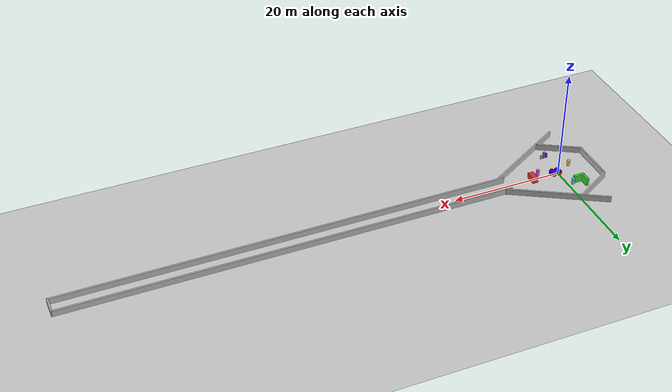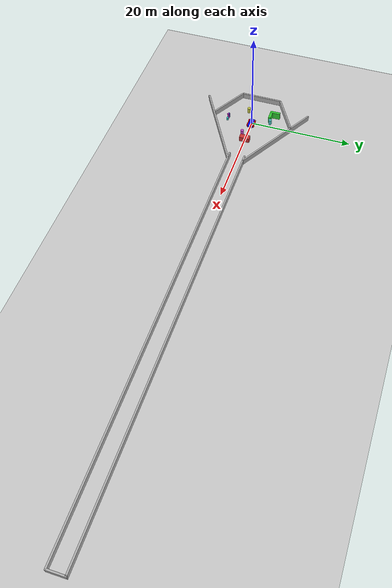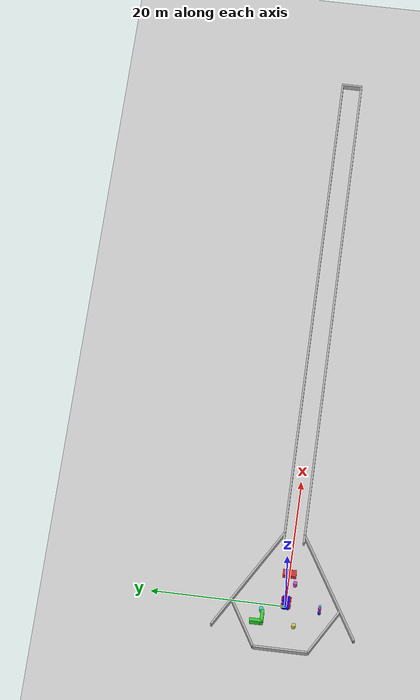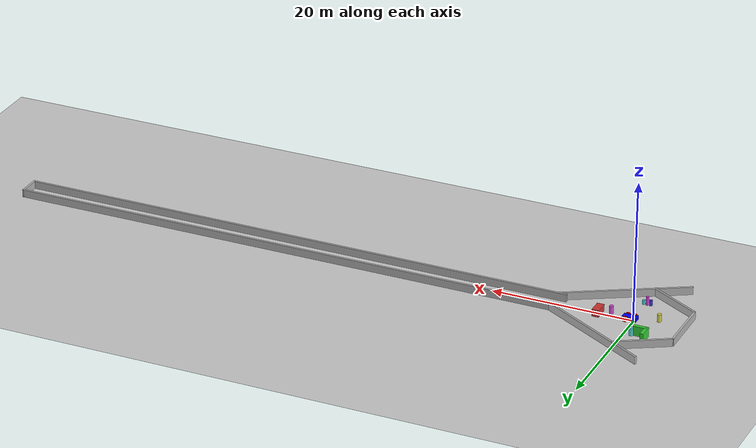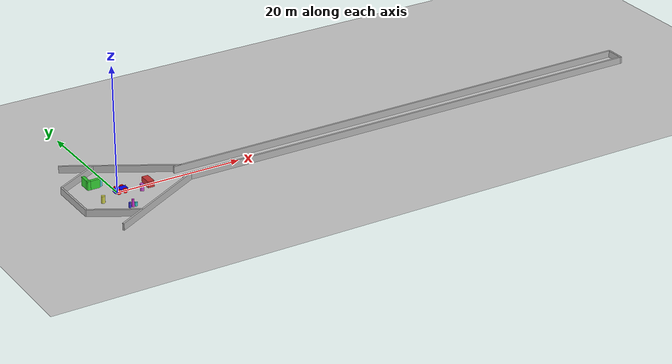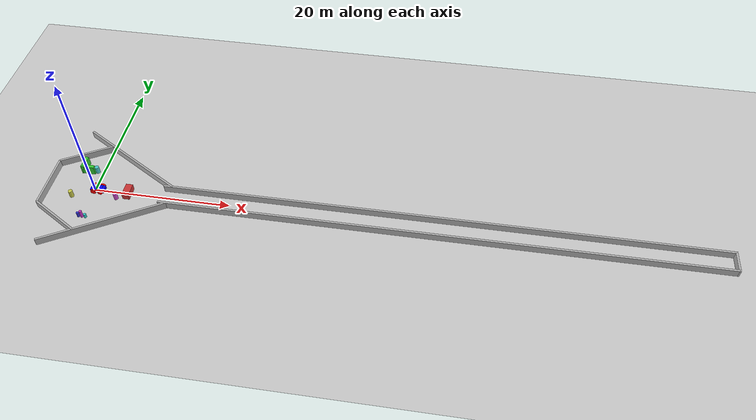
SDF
<?xml version="1.0" ?>
<sdf version="1.7">
    <world name="car_world">
        <physics name="1ms" type="ignored">
            <max_step_size>0.001</max_step_size>
            <real_time_factor>1.0</real_time_factor>
        </physics>

        <!-- 模拟世界的动态 -->
        <plugin
            filename="libignition-gazebo-physics-system.so"
            name="ignition::gazebo::systems::Physics">
        </plugin>

        <!-- 负责创建模型、移动模型、删除模型和许多其他用户命令 -->
        <plugin
            filename="libignition-gazebo-user-commands-system.so"
            name="ignition::gazebo::systems::UserCommands">
        </plugin>
        <plugin
            filename="libignition-gazebo-scene-broadcaster-system.so"
            name="ignition::gazebo::systems::SceneBroadcaster">
        </plugin>

        <!-- 碰撞检测传感器 -->
        <plugin filename="libignition-gazebo-contact-system.so"
                name="ignition::gazebo::systems::Contact">
        </plugin>

        <gui fullscreen="0">

            <!-- 负责显示世界的 3D 场景 -->
            <plugin filename="GzScene3D" name="3D View">
                <ignition-gui>
                <title>3D View</title>
                <property type="bool" key="showTitleBar">false</property>
                <property type="string" key="state">docked</property>
                </ignition-gui>

                <engine>ogre2</engine>
                <scene>scene</scene>
                <ambient_light>0.4 0.4 0.4</ambient_light>
                <background_color>0.8 0.8 0.8</background_color>
            </plugin>

            <!-- 负责控制世界 -->
            <plugin filename="WorldControl" name="World control">
                <ignition-gui>
                <title>World control</title>
                <property type="bool" key="showTitleBar">false</property>
                <property type="bool" key="resizable">false</property>
                <property type="double" key="height">72</property>
                <property type="double" key="width">121</property>
                <property type="double" key="z">1</property>

                <property type="string" key="state">floating</property>
                <anchors target="3D View">
                    <line own="left" target="left"/>
                    <line own="bottom" target="bottom"/>
                </anchors>
                </ignition-gui>

                <play_pause>true</play_pause>
                <step>true</step>
                <start_paused>true</start_paused>
                <service>/world/car_world/control</service>
                <stats_topic>/world/car_world/stats</stats_topic>
            </plugin>

            <!-- 负责显示世界统计数据 -->
            <plugin filename="WorldStats" name="World stats">
                <ignition-gui>
                <title>World stats</title>
                <property type="bool" key="showTitleBar">false</property>
                <property type="bool" key="resizable">false</property>
                <property type="double" key="height">110</property>
                <property type="double" key="width">290</property>
                <property type="double" key="z">1</property>

                <property type="string" key="state">floating</property>
                <anchors target="3D View">
                    <line own="right" target="right"/>
                    <line own="bottom" target="bottom"/>
                </anchors>
                </ignition-gui>

                <sim_time>true</sim_time>
                <real_time>true</real_time>
                <real_time_factor>true</real_time_factor>
                <iterations>true</iterations>
                <topic>/world/car_world/stats</topic>

            </plugin>

            <!-- Entity tree -->
            <plugin filename="EntityTree" name="Entity tree">
            </plugin>

            <!-- 监测键盘输入 -->
            <plugin filename="KeyPublisher" name="Key Publisher"/>

        </gui>

        <light type="directional" name="sun">
            <cast_shadows>true</cast_shadows>
            <pose>0 0 10 0 0 0</pose>
            <diffuse>0.8 0.8 0.8 1</diffuse>
            <specular>0.2 0.2 0.2 1</specular>
            <attenuation>
                <range>1000</range>
                <constant>0.9</constant>
                <linear>0.01</linear>
                <quadratic>0.001</quadratic>
            </attenuation>
            <direction>-0.5 0.1 -0.9</direction>
        </light>

        <model name="ground_plane">
            <static>true</static>
            <link name="link">
                <collision name="collision">
                <geometry>
                    <plane>
                    <normal>0 0 1</normal>
                    </plane>
                </geometry>
                </collision>
                <visual name="visual">
                <geometry>
                    <plane>
                    <normal>0 0 1</normal>
                    <size>100 100</size>
                    </plane>
                </geometry>
                <material>
                    <ambient>0.8 0.8 0.8 1</ambient>
                    <diffuse>0.8 0.8 0.8 1</diffuse>
                    <specular>0.8 0.8 0.8 1</specular>
                </material>
                </visual>
            </link>
        </model>

        <!-- 正六边形围墙 -->
        <!-- 六边形半径为 8 米，每条边长约 8 米 -->

        <!-- 墙1: 正前方 (0°) - 已移除以创建开口 -->

        <!-- 墙2: 右前方 (60°) - 延长以形成漏斗 -->
        <model name='hex_wall_2'>
            <static>true</static>
            <pose>3.464 6 0 0 0 1.047</pose>
            <link name='link'>
                <visual name='visual'>
                    <geometry>
                        <box>
                            <size>0.3 18.0 2.0</size>
                        </box>
                    </geometry>
                    <material>
                        <ambient>0.7 0.7 0.7 1</ambient>
                        <diffuse>0.7 0.7 0.7 1</diffuse>
                        <specular>0.5 0.5 0.5 1</specular>
                    </material>
                </visual>
                <collision name='collision'>
                    <geometry>
                        <box>
                            <size>0.3 18.0 2.0</size>
                        </box>
                    </geometry>
                </collision>
            </link>
        </model>

        <!-- 墙3: 右后方 (120°) -->
        <model name='hex_wall_3'>
            <static>true</static>
            <pose>-3.464 6.0 0 0 0 2.094</pose>
            <link name='link'>
                <visual name='visual'>
                    <geometry>
                        <box>
                            <size>0.3 8.0 2.0</size>
                        </box>
                    </geometry>
                    <material>
                        <ambient>0.7 0.7 0.7 1</ambient>
                        <diffuse>0.7 0.7 0.7 1</diffuse>
                        <specular>0.5 0.5 0.5 1</specular>
                    </material>
                </visual>
                <collision name='collision'>
                    <geometry>
                        <box>
                            <size>0.3 8.0 2.0</size>
                        </box>
                    </geometry>
                </collision>
            </link>
        </model>

        <!-- 墙4: 正后方 (180°) -->
        <model name='hex_wall_4'>
            <static>true</static>
            <pose>-6.928 0 0 0 0 3.14159</pose>
            <link name='link'>
                <visual name='visual'>
                    <geometry>
                        <box>
                            <size>0.3 8.0 2.0</size>
                        </box>
                    </geometry>
                    <material>
                        <ambient>0.7 0.7 0.7 1</ambient>
                        <diffuse>0.7 0.7 0.7 1</diffuse>
                        <specular>0.5 0.5 0.5 1</specular>
                    </material>
                </visual>
                <collision name='collision'>
                    <geometry>
                        <box>
                            <size>0.3 8.0 2.0</size>
                        </box>
                    </geometry>
                </collision>
            </link>
        </model>

        <!-- 墙5: 左后方 (240°) -->
        <model name='hex_wall_5'>
            <static>true</static>
            <pose>-3.464 -6.0 0 0 0 -2.094</pose>
            <link name='link'>
                <visual name='visual'>
                    <geometry>
                        <box>
                            <size>0.3 8.0 2.0</size>
                        </box>
                    </geometry>
                    <material>
                        <ambient>0.7 0.7 0.7 1</ambient>
                        <diffuse>0.7 0.7 0.7 1</diffuse>
                        <specular>0.5 0.5 0.5 1</specular>
                    </material>
                </visual>
                <collision name='collision'>
                    <geometry>
                        <box>
                            <size>0.3 8.0 2.0</size>
                        </box>
                    </geometry>
                </collision>
            </link>
        </model>

        <!-- 墙6: 左前方 (300°) - 延长以形成漏斗 -->
        <model name='hex_wall_6'>
            <static>true</static>
            <pose>3.464 -6 0 0 0 -1.047</pose>
            <link name='link'>
                <visual name='visual'>
                    <geometry>
                        <box>
                            <size>0.3 18.0 2.0</size>
                        </box>
                    </geometry>
                    <material>
                        <ambient>0.7 0.7 0.7 1</ambient>
                        <diffuse>0.7 0.7 0.7 1</diffuse>
                        <specular>0.5 0.5 0.5 1</specular>
                    </material>
                </visual>
                <collision name='collision'>
                    <geometry>
                        <box>
                            <size>0.3 18.0 2.0</size>
                        </box>
                    </geometry>
                </collision>
            </link>
        </model>

        <!-- 狭长通道 - 左墙 -->
        <model name='corridor_left'>
            <static>true</static>
            <pose>50 1.5 0 0 0 0</pose>
            <link name='link'>
                <visual name='visual'>
                    <geometry>
                        <box>
                            <size>80 0.3 2.0</size>
                        </box>
                    </geometry>
                    <material>
                        <ambient>0.7 0.7 0.7 1</ambient>
                        <diffuse>0.7 0.7 0.7 1</diffuse>
                        <specular>0.5 0.5 0.5 1</specular>
                    </material>
                </visual>
                <collision name='collision'>
                    <geometry>
                        <box>
                            <size>80 0.3 2.0</size>
                        </box>
                    </geometry>
                </collision>
            </link>
        </model>

        <!-- 狭长通道 - 右墙 -->
        <model name='corridor_right'>
            <static>true</static>
            <pose>50 -1.5 0 0 0 0</pose>
            <link name='link'>
                <visual name='visual'>
                    <geometry>
                        <box>
                            <size>80 0.3 2.0</size>
                        </box>
                    </geometry>
                    <material>
                        <ambient>0.7 0.7 0.7 1</ambient>
                        <diffuse>0.7 0.7 0.7 1</diffuse>
                        <specular>0.5 0.5 0.5 1</specular>
                    </material>
                </visual>
                <collision name='collision'>
                    <geometry>
                        <box>
                            <size>80 0.3 2.0</size>
                        </box>
                    </geometry>
                </collision>
            </link>
        </model>

        <!-- 通道末端封闭墙 -->
        <model name='corridor_end'>
            <static>true</static>
            <pose>90 0 0 0 0 0</pose>
            <link name='link'>
                <visual name='visual'>
                    <geometry>
                        <box>
                            <size>0.3 3.3 2.0</size>
                        </box>
                    </geometry>
                    <material>
                        <ambient>0.7 0.7 0.7 1</ambient>
                        <diffuse>0.7 0.7 0.7 1</diffuse>
                        <specular>0.5 0.5 0.5 1</specular>
                    </material>
                </visual>
                <collision name='collision'>
                    <geometry>
                        <box>
                            <size>0.3 3.3 2.0</size>
                        </box>
                    </geometry>
                </collision>
            </link>
        </model>

        <!-- 内部随机分布的圆柱障碍物 -->

        <!-- 柱子4 -->
        <model name='pillar_4'>
            <static>true</static>
            <pose>-3.0 -1.5 0 0 0 0</pose>
            <link name='link'>
                <visual name='visual'>
                    <geometry>
                        <cylinder>
                            <radius>0.3</radius>
                            <length>2.0</length>
                        </cylinder>
                    </geometry>
                    <material>
                        <ambient>0.8 0.8 0.3 1</ambient>
                        <diffuse>0.8 0.8 0.3 1</diffuse>
                        <specular>0.5 0.5 0.5 1</specular>
                    </material>
                </visual>
                <collision name='collision'>
                    <geometry>
                        <cylinder>
                            <radius>0.3</radius>
                            <length>2.0</length>
                        </cylinder>
                    </geometry>
                </collision>
            </link>
        </model>

        <!-- 柱子5 -->
        <model name='pillar_5'>
            <static>true</static>
            <pose>3.5 -1.0 0 0 0 0</pose>
            <link name='link'>
                <visual name='visual'>
                    <geometry>
                        <cylinder>
                            <radius>0.3</radius>
                            <length>2.0</length>
                        </cylinder>
                    </geometry>
                    <material>
                        <ambient>0.8 0.3 0.8 1</ambient>
                        <diffuse>0.8 0.3 0.8 1</diffuse>
                        <specular>0.5 0.5 0.5 1</specular>
                    </material>
                </visual>
                <collision name='collision'>
                    <geometry>
                        <cylinder>
                            <radius>0.3</radius>
                            <length>2.0</length>
                        </cylinder>
                    </geometry>
                </collision>
            </link>
        </model>

        <!-- 柱子6 -->
        <model name='pillar_6'>
            <static>true</static>
            <pose>-1.0 3.5 0 0 0 0</pose>
            <link name='link'>
                <visual name='visual'>
                    <geometry>
                        <cylinder>
                            <radius>0.3</radius>
                            <length>2.0</length>
                        </cylinder>
                    </geometry>
                    <material>
                        <ambient>0.3 0.8 0.8 1</ambient>
                        <diffuse>0.3 0.8 0.8 1</diffuse>
                        <specular>0.5 0.5 0.5 1</specular>
                    </material>
                </visual>
                <collision name='collision'>
                    <geometry>
                        <cylinder>
                            <radius>0.3</radius>
                            <length>2.0</length>
                        </cylinder>
                    </geometry>
                </collision>
            </link>
        </model>

        <!-- 添加非对称地标物体，帮助 SLAM 区分位置 -->

        <!-- 大型方形障碍物 - 东侧 -->
        <model name='landmark_box'>
            <static>true</static>
            <pose>5 0 0.5 0 0 0</pose>
            <link name='link'>
                <collision name='collision'>
                    <geometry>
                        <box>
                            <size>1.0 2.0 1.0</size>
                        </box>
                    </geometry>
                </collision>
                <visual name='visual'>
                    <geometry>
                        <box>
                            <size>1.0 2.0 1.0</size>
                        </box>
                    </geometry>
                    <material>
                        <ambient>0.8 0.2 0.2 1</ambient>
                        <diffuse>0.8 0.2 0.2 1</diffuse>
                    </material>
                </visual>
            </link>
        </model>

        <!-- L 形障碍物 - 西北侧 -->
        <model name='landmark_L_shape'>
            <static>true</static>
            <pose>-3 4 0.3 0 0 0</pose>
            <link name='link'>
                <collision name='collision1'>
                    <pose>0 0 0 0 0 0</pose>
                    <geometry>
                        <box>
                            <size>0.5 2.0 2</size>
                        </box>
                    </geometry>
                </collision>
                <collision name='collision2'>
                    <pose>0.75 -0.75 0 0 0 0</pose>
                    <geometry>
                        <box>
                            <size>2.0 0.5 2</size>
                        </box>
                    </geometry>
                </collision>
                <visual name='visual1'>
                    <pose>0 0 0 0 0 0</pose>
                    <geometry>
                        <box>
                            <size>0.5 2.0 2</size>
                        </box>
                    </geometry>
                    <material>
                        <ambient>0.2 0.8 0.2 1</ambient>
                        <diffuse>0.2 0.8 0.2 1</diffuse>
                    </material>
                </visual>
                <visual name='visual2'>
                    <pose>0.75 -0.75 0 0 0 0</pose>
                    <geometry>
                        <box>
                            <size>2.0 0.5 2</size>
                        </box>
                    </geometry>
                    <material>
                        <ambient>0.2 0.8 0.2 1</ambient>
                        <diffuse>0.2 0.8 0.2 1</diffuse>
                    </material>
                </visual>
            </link>
        </model>

        <!-- 三个不同高度的柱子群 - 南侧 -->
        <model name='landmark_pillars'>
            <static>true</static>
            <pose>0 -5 0 0 0 0</pose>
            <link name='link'>
                <collision name='collision1'>
                    <pose>-0.5 0 0.4 0 0 0</pose>
                    <geometry>
                        <cylinder>
                            <radius>0.2</radius>
                            <length>0.8</length>
                        </cylinder>
                    </geometry>
                </collision>
                <collision name='collision2'>
                    <pose>0 0 0.6 0 0 0</pose>
                    <geometry>
                        <cylinder>
                            <radius>0.2</radius>
                            <length>1.2</length>
                        </cylinder>
                    </geometry>
                </collision>
                <collision name='collision3'>
                    <pose>0.5 0 0.3 0 0 0</pose>
                    <geometry>
                        <cylinder>
                            <radius>0.2</radius>
                            <length>0.6</length>
                        </cylinder>
                    </geometry>
                </collision>
                <visual name='visual1'>
                    <pose>-0.5 0 0.4 0 0 0</pose>
                    <geometry>
                        <cylinder>
                            <radius>0.2</radius>
                            <length>0.8</length>
                        </cylinder>
                    </geometry>
                    <material>
                        <ambient>0.2 0.2 0.8 1</ambient>
                        <diffuse>0.2 0.2 0.8 1</diffuse>
                    </material>
                </visual>
                <visual name='visual2'>
                    <pose>0 0 0.6 0 0 0</pose>
                    <geometry>
                        <cylinder>
                            <radius>0.2</radius>
                            <length>1.2</length>
                        </cylinder>
                    </geometry>
                    <material>
                        <ambient>0.8 0.2 0.8 1</ambient>
                        <diffuse>0.8 0.2 0.8 1</diffuse>
                    </material>
                </visual>
                <visual name='visual3'>
                    <pose>0.5 0 0.3 0 0 0</pose>
                    <geometry>
                        <cylinder>
                            <radius>0.2</radius>
                            <length>0.6</length>
                        </cylinder>
                    </geometry>
                    <material>
                        <ambient>0.2 0.8 0.8 1</ambient>
                        <diffuse>0.2 0.8 0.8 1</diffuse>
                    </material>
                </visual>
            </link>
        </model>

        <!-- 引用机器人模型 -->
        <include>
            <uri>/home/flowhist/ign_ws/src/robo_ctrl/models/vehicle_robot</uri>
            <name>vehicle_robot</name>
            <pose>0 0 0 0 0 0</pose>
        </include>

        <!-- 引用actor可动障碍物 -->

    </world>
</sdf>

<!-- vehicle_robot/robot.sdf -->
<sdf version="1.7">
    <model name='vehicle_robot' canonical_link='chassis'>
        <pose>0 0 0 0 0 0</pose>

        <link name='chassis'>
            <pose relative_to='__model__'>0.5 0 0.4 0 0 0</pose>
            <inertial>
                <mass>1.14395</mass>
                <inertia>
                    <ixx>0.095329</ixx>
                    <ixy>0</ixy>
                    <ixz>0</ixz>
                    <iyy>0.381317</iyy>
                    <iyz>0</iyz>
                    <izz>0.476646</izz>
                </inertia>
            </inertial>
            <visual name='visual'>
                <geometry>
                    <box>
                        <size>2.0 1.0 0.5</size>
                    </box>
                </geometry>
                <material>
                    <ambient>0.0 0.0 1.0 1</ambient>
                    <diffuse>0.0 0.0 1.0 1</diffuse>
                    <specular>0.0 0.0 1.0 1</specular>
                </material>
            </visual>
            <collision name='collision'>
                <geometry>
                    <box>
                        <size>2.0 1.0 0.5</size>
                    </box>
                </geometry>
            </collision>
        </link>

        <!-- IMU 传感器 Link -->
        <link name='imu_link'>
            <pose relative_to="chassis">0 0 0.3 0 0 0</pose>  <!-- IMU 位置：chassis 中心上方 30cm -->
            <inertial>
                <mass>0.02</mass>  <!-- IMU 重量 20g -->
                <inertia>
                    <ixx>0.000001</ixx>
                    <ixy>0</ixy>
                    <ixz>0</ixz>
                    <iyy>0.000001</iyy>
                    <iyz>0</iyz>
                    <izz>0.000001</izz>
                </inertia>
            </inertial>
            <visual name='visual'>
                <geometry>
                    <box>
                        <size>0.02 0.02 0.01</size>  <!-- 小方块：2cm x 2cm x 1cm -->
                    </box>
                </geometry>
                <material>
                    <ambient>0.2 0.8 0.2 1</ambient>  <!-- 绿色 -->
                    <diffuse>0.2 0.8 0.2 1</diffuse>
                    <specular>0.2 0.8 0.2 1</specular>
                </material>
            </visual>
            <collision name='collision'>
                <geometry>
                    <box>
                        <size>0.02 0.02 0.01</size>
                    </box>
                </geometry>
            </collision>

            <!-- IMU传感器 -->
            <sensor name="imu_sensor" type="imu">
                <pose>0 0 0 0 0 0</pose>  <!-- 传感器在 imu_link 中心 -->
                <always_on>1</always_on>
                <update_rate>100</update_rate>  <!-- 提高到 100 Hz -->
                <visualize>true</visualize>
                <topic>imu</topic>
                <ignition_frame_id>vehicle_robot/imu_link</ignition_frame_id>  <!-- 更新 frame_id -->
                <imu>
                    <!-- 添加噪声参数，让 IMU 数据更真实 -->
                    <angular_velocity>
                        <x>
                            <noise type="gaussian">
                                <mean>0.0</mean>
                                <stddev>2e-4</stddev>
                            </noise>
                        </x>
                        <y>
                            <noise type="gaussian">
                                <mean>0.0</mean>
                                <stddev>2e-4</stddev>
                            </noise>
                        </y>
                        <z>
                            <noise type="gaussian">
                                <mean>0.0</mean>
                                <stddev>2e-4</stddev>
                            </noise>
                        </z>
                    </angular_velocity>
                    <linear_acceleration>
                        <x>
                            <noise type="gaussian">
                                <mean>0.0</mean>
                                <stddev>1.7e-2</stddev>
                            </noise>
                        </x>
                        <y>
                            <noise type="gaussian">
                                <mean>0.0</mean>
                                <stddev>1.7e-2</stddev>
                            </noise>
                        </y>
                        <z>
                            <noise type="gaussian">
                                <mean>0.0</mean>
                                <stddev>1.7e-2</stddev>
                            </noise>
                        </z>
                    </linear_acceleration>
                    <!-- 添加方向噪声（关键！） -->
                    <orientation>
                        <x>
                            <noise type="gaussian">
                                <mean>0.0</mean>
                                <stddev>0.00017</stddev>
                            </noise>
                        </x>
                        <y>
                            <noise type="gaussian">
                                <mean>0.0</mean>
                                <stddev>0.00017</stddev>
                            </noise>
                        </y>
                        <z>
                            <noise type="gaussian">
                                <mean>0.0</mean>
                                <stddev>0.00017</stddev>
                            </noise>
                        </z>
                    </orientation>
                </imu>
            </sensor>
        </link>

        <!-- IMU Joint：将 IMU 连接到底盘 -->
        <joint name='imu_joint' type='fixed'>
            <child>imu_link</child>
            <parent>chassis</parent>
        </joint>

        <!-- 激光雷达 Link -->
        <link name='lidar_link'>
            <pose relative_to="chassis">0.8 0 0.5 0 0 0</pose>
            <inertial>
                <mass>0.1</mass>  <!-- 雷达重量 100g -->
                <inertia>
                    <ixx>0.000167</ixx>
                    <ixy>0</ixy>
                    <ixz>0</ixz>
                    <iyy>0.000167</iyy>
                    <iyz>0</iyz>
                    <izz>0.000167</izz>
                </inertia>
            </inertial>
            <visual name='visual'>
                <geometry>
                    <cylinder>
                        <radius>0.04875</radius> <!-- 原0.05→48.75mm，匹配R2直径97.5mm -->
                        <length>0.0805</length>  <!-- 原0.07→80.5mm，匹配R2高度 -->
                    </cylinder>
                </geometry>
                <material>
                    <ambient>0.1 0.1 0.1 1</ambient>
                    <diffuse>0.1 0.1 0.1 1</diffuse>
                    <specular>0.1 0.1 0.1 1</specular>
                </material>
            </visual>
            <collision name='collision'>
                <geometry>
                    <cylinder>
                        <radius>0.04875</radius>
                        <length>0.0805</length>
                    </cylinder>
                </geometry>
            </collision>

            <!-- 激光雷达传感器 -->
            <sensor name='gpu_lidar' type='gpu_lidar'>
                <pose>0 0 0 0 0 0</pose>  <!-- 传感器在 lidar_link 中心 -->
                <topic>lidar</topic>
                <update_rate>30</update_rate>
                <ignition_frame_id>vehicle_robot/lidar_link</ignition_frame_id>  <!-- 更新 frame_id -->
                <ray>
                    <scan>
                        <horizontal>
                        <!-- 1. 水平采样数：3600个（R2雷达0.1°角分辨率，360°/3600=0.1°），原360需改为3600 -->
                        <samples>3600</samples>
                        <resolution>1</resolution>
                        <!-- 2. 水平角度范围：R2是360°全向扫描，原-π~π（180°）需改为0~2π -->
                        <min_angle>0.0</min_angle>
                        <max_angle>6.28319</max_angle> <!-- 2π rad = 360° -->
                        </horizontal>
                        <vertical>
                        <!-- 3. 垂直参数：R2是单线雷达，保持1个采样点即可 -->
                        <samples>1</samples>
                        <resolution>0.01</resolution>
                        <min_angle>0</min_angle>
                        <max_angle>0</max_angle>
                        </vertical>
                    </scan>
                    <range>
                        <!-- 4. 测距范围：R2有效范围0.1~45m，原10.0需改为45.0 -->
                        <min>0.1</min>
                        <max>45.0</max>
                        <resolution>0.01</resolution>
                    </range>
                    <!-- 5. 新增噪声配置（匹配R2测距误差：±20~30mm） -->
                    <noise>
                        <type>gaussian</type>
                        <mean>0.0</mean>
                        <stddev>0.02</stddev> <!-- 标准差20mm，覆盖中短距误差，长距可调整为0.03 -->
                    </noise>
                </ray>
                <always_on>1</always_on>
                <visualize>true</visualize>
            </sensor>
        </link>

        <!-- 雷达 Joint：将雷达连接到底盘 -->
        <joint name='lidar_joint' type='fixed'>
            <child>lidar_link</child>
            <parent>chassis</parent>
        </joint>

        <!-- Rear left wheel -->
        <link name='left_rear_wheel'>
            <pose relative_to="chassis">-0.5 0.6 0 -1.5707 0 0</pose>
            <inertial>
                <mass>1</mass>
                <inertia>
                    <ixx>0.043333</ixx>
                    <ixy>0</ixy>
                    <ixz>0</ixz>
                    <iyy>0.043333</iyy>
                    <iyz>0</iyz>
                    <izz>0.08</izz>
                </inertia>
            </inertial>
            <visual name='visual'>
                <geometry>
                    <cylinder>
                        <radius>0.4</radius>
                        <length>0.2</length>
                    </cylinder>
                </geometry>
                <material>
                    <ambient>1.0 0.0 0.0 1</ambient>
                    <diffuse>1.0 0.0 0.0 1</diffuse>
                    <specular>1.0 0.0 0.0 1</specular>
                </material>
            </visual>
            <collision name='collision'>
                <geometry>
                    <cylinder>
                        <radius>0.4</radius>
                        <length>0.2</length>
                    </cylinder>
                </geometry>
            </collision>
        </link>

        <!-- Rear right wheel -->
        <link name='right_rear_wheel'>
            <pose relative_to="chassis">-0.5 -0.6 0 -1.5707 0 0</pose>
            <inertial>
                <mass>1</mass>
                <inertia>
                    <ixx>0.043333</ixx>
                    <ixy>0</ixy>
                    <ixz>0</ixz>
                    <iyy>0.043333</iyy>
                    <iyz>0</iyz>
                    <izz>0.08</izz>
                </inertia>
            </inertial>
            <visual name='visual'>
                <geometry>
                    <cylinder>
                        <radius>0.4</radius>
                        <length>0.2</length>
                    </cylinder>
                </geometry>
                <material>
                    <ambient>1.0 0.0 0.0 1</ambient>
                    <diffuse>1.0 0.0 0.0 1</diffuse>
                    <specular>1.0 0.0 0.0 1</specular>
                </material>
            </visual>
            <collision name='collision'>
                <geometry>
                    <cylinder>
                        <radius>0.4</radius>
                        <length>0.2</length>
                    </cylinder>
                </geometry>
            </collision>
        </link>

        <!-- Front left wheel -->
        <link name='left_front_wheel'>
            <pose relative_to="chassis">0.5 0.6 0 -1.5707 0 0</pose>
            <inertial>
                <mass>1</mass>
                <inertia>
                    <ixx>0.043333</ixx>
                    <ixy>0</ixy>
                    <ixz>0</ixz>
                    <iyy>0.043333</iyy>
                    <iyz>0</iyz>
                    <izz>0.08</izz>
                </inertia>
            </inertial>
            <visual name='visual'>
                <geometry>
                    <cylinder>
                        <radius>0.4</radius>
                        <length>0.2</length>
                    </cylinder>
                </geometry>
                <material>
                    <ambient>1.0 0.0 0.0 1</ambient>
                    <diffuse>1.0 0.0 0.0 1</diffuse>
                    <specular>1.0 0.0 0.0 1</specular>
                </material>
            </visual>
            <collision name='collision'>
                <geometry>
                    <cylinder>
                        <radius>0.4</radius>
                        <length>0.2</length>
                    </cylinder>
                </geometry>
            </collision>
        </link>

        <!-- Front right wheel -->
        <link name='right_front_wheel'>
            <pose relative_to="chassis">0.5 -0.6 0 -1.5707 0 0</pose>
            <inertial>
                <mass>1</mass>
                <inertia>
                    <ixx>0.043333</ixx>
                    <ixy>0</ixy>
                    <ixz>0</ixz>
                    <iyy>0.043333</iyy>
                    <iyz>0</iyz>
                    <izz>0.08</izz>
                </inertia>
            </inertial>
            <visual name='visual'>
                <geometry>
                    <cylinder>
                        <radius>0.4</radius>
                        <length>0.2</length>
                    </cylinder>
                </geometry>
                <material>
                    <ambient>1.0 0.0 0.0 1</ambient>
                    <diffuse>1.0 0.0 0.0 1</diffuse>
                    <specular>1.0 0.0 0.0 1</specular>
                </material>
            </visual>
            <collision name='collision'>
                <geometry>
                    <cylinder>
                        <radius>0.4</radius>
                        <length>0.2</length>
                    </cylinder>
                </geometry>
            </collision>
        </link>
        <!-- Rear left wheel joint -->
        <joint name='left_rear_wheel_joint' type='revolute'>
            <pose relative_to='left_rear_wheel'/>
            <parent>chassis</parent>
            <child>left_rear_wheel</child>
            <axis>
                <xyz expressed_in='__model__'>0 1 0</xyz>
                <limit>
                    <lower>-1.79769e+308</lower>
                    <upper>1.79769e+308</upper>
                </limit>
            </axis>
        </joint>

        <!-- Rear right wheel joint -->
        <joint name='right_rear_wheel_joint' type='revolute'>
            <pose relative_to='right_rear_wheel'/>
            <parent>chassis</parent>
            <child>right_rear_wheel</child>
            <axis>
                <xyz expressed_in='__model__'>0 1 0</xyz>
                <limit>
                    <lower>-1.79769e+308</lower>
                    <upper>1.79769e+308</upper>
                </limit>
            </axis>
        </joint>

        <!-- Front left wheel joint -->
        <joint name='left_front_wheel_joint' type='revolute'>
            <pose relative_to='left_front_wheel'/>
            <parent>chassis</parent>
            <child>left_front_wheel</child>
            <axis>
                <xyz expressed_in='__model__'>0 1 0</xyz>
                <limit>
                    <lower>-1.79769e+308</lower>
                    <upper>1.79769e+308</upper>
                </limit>
            </axis>
        </joint>

        <!-- Front right wheel joint -->
        <joint name='right_front_wheel_joint' type='revolute'>
            <pose relative_to='right_front_wheel'/>
            <parent>chassis</parent>
            <child>right_front_wheel</child>
            <axis>
                <xyz expressed_in='__model__'>0 1 0</xyz>
                <limit>
                    <lower>-1.79769e+308</lower>
                    <upper>1.79769e+308</upper>
                </limit>
            </axis>
        </joint>

        <!-- Differential drive plugin for 4-wheel drive -->
        <plugin
            filename="libignition-gazebo-diff-drive-system.so"
            name="ignition::gazebo::systems::DiffDrive">
            <left_joint>left_rear_wheel_joint</left_joint>
            <left_joint>left_front_wheel_joint</left_joint>
            <right_joint>right_rear_wheel_joint</right_joint>
            <right_joint>right_front_wheel_joint</right_joint>
            <wheel_separation>1.2</wheel_separation>
            <wheel_radius>0.4</wheel_radius>
            <odom_publish_frequency>50</odom_publish_frequency>  <!-- 提高到 50Hz，避免 TF 外推警告 -->
            <topic>cmd_vel</topic>
        </plugin>

        <!-- 配置四个方向键的控制指令 -->
        <!-- Moving Forward-->
        <plugin filename="libignition-gazebo-triggered-publisher-system.so"
                name="ignition::gazebo::systems::TriggeredPublisher">
            <input type="ignition.msgs.Int32" topic="/keyboard/keypress">
                <match field="data">16777235</match>
            </input>
            <output type="ignition.msgs.Twist" topic="/cmd_vel">
                linear: {x: 2}, angular: {z: 0.0}
            </output>
        </plugin>

        <!-- Moving Backward-->
        <plugin filename="libignition-gazebo-triggered-publisher-system.so"
                name="ignition::gazebo::systems::TriggeredPublisher">
            <input type="ignition.msgs.Int32" topic="/keyboard/keypress">
                <match field="data">16777237</match>
            </input>
            <output type="ignition.msgs.Twist" topic="/cmd_vel">
                linear: {x: -2}, angular: {z: 0.0}
            </output>
        </plugin>

        <!-- Rotating right-->
        <plugin filename="libignition-gazebo-triggered-publisher-system.so"
                name="ignition::gazebo::systems::TriggeredPublisher">
            <input type="ignition.msgs.Int32" topic="/keyboard/keypress">
                <match field="data">16777236</match>
            </input>
            <output type="ignition.msgs.Twist" topic="/cmd_vel">
                linear: {x: 0.0}, angular: {z: -1.5}
            </output>
        </plugin>

        <!--Rotating left-->
        <plugin filename="libignition-gazebo-triggered-publisher-system.so"
                name="ignition::gazebo::systems::TriggeredPublisher">
            <input type="ignition.msgs.Int32" topic="/keyboard/keypress">
                <match field="data">16777234</match>
            </input>
            <output type="ignition.msgs.Twist" topic="/cmd_vel">
                linear: {x: 0.0}, angular: {z: 1.5}
            </output>
        </plugin>

        <!-- 碰撞后停止 -->
        <plugin filename="libignition-gazebo-triggered-publisher-system.so"
                name="ignition::gazebo::systems::TriggeredPublisher">
            <input type="ignition.msgs.Boolean" topic="/wall/touched">
                <match>data: true</match>
            </input>
            <output type="ignition.msgs.Twist" topic="/cmd_vel">
                linear: {x: 0.0}, angular: {z: 0.0}
            </output>
        </plugin>

        <!-- IMU传感器 -->
        <plugin filename="libignition-gazebo-imu-system.so"
                name="ignition::gazebo::systems::Imu">
        </plugin>

        <!-- 激光雷达传感器 -->
        <plugin
            filename="libignition-gazebo-sensors-system.so"
            name="ignition::gazebo::systems::Sensors">
            <render_engine>ogre2</render_engine>
        </plugin>

        <!-- Joint State Publisher 插件 -->
        <plugin
            filename="libignition-gazebo-joint-state-publisher-system.so"
            name="ignition::gazebo::systems::JointStatePublisher">
            <joint_name>left_rear_wheel_joint</joint_name>
            <joint_name>right_rear_wheel_joint</joint_name>
            <joint_name>left_front_wheel_joint</joint_name>
            <joint_name>right_front_wheel_joint</joint_name>
        </plugin>
    </model>
</sdf>
